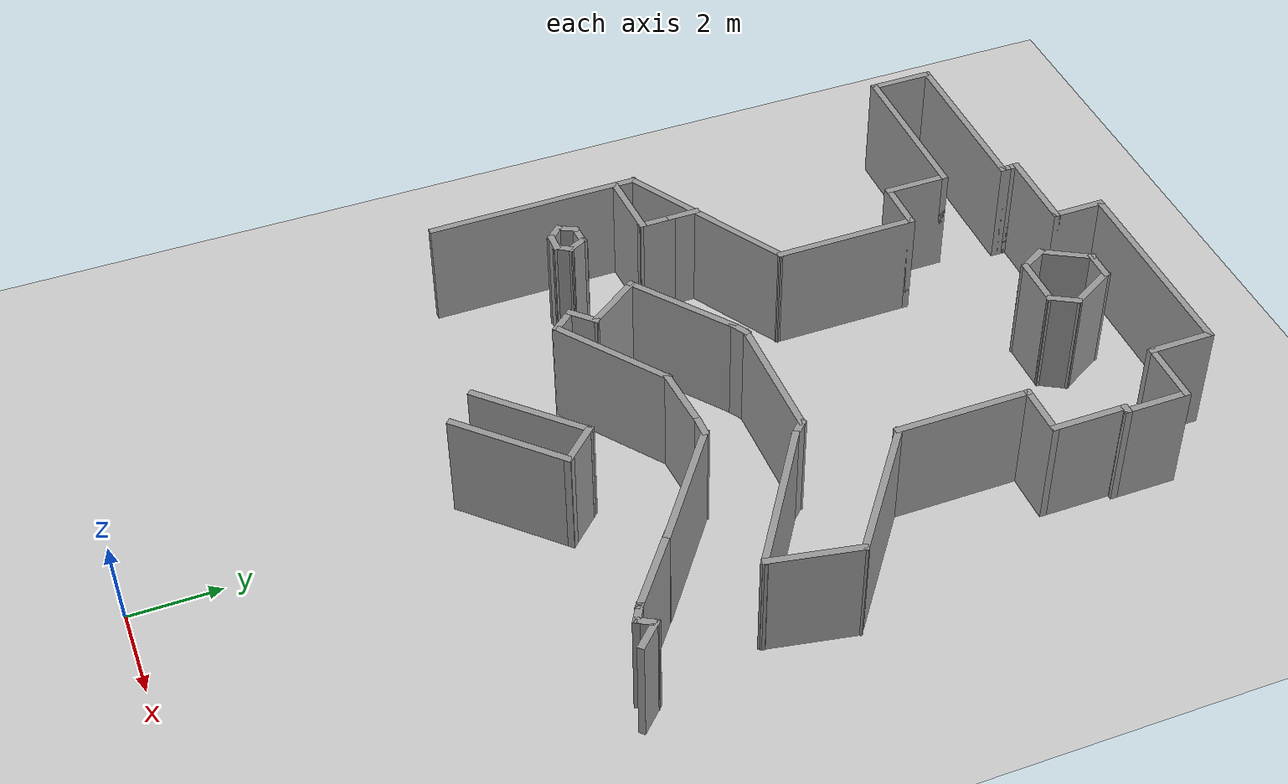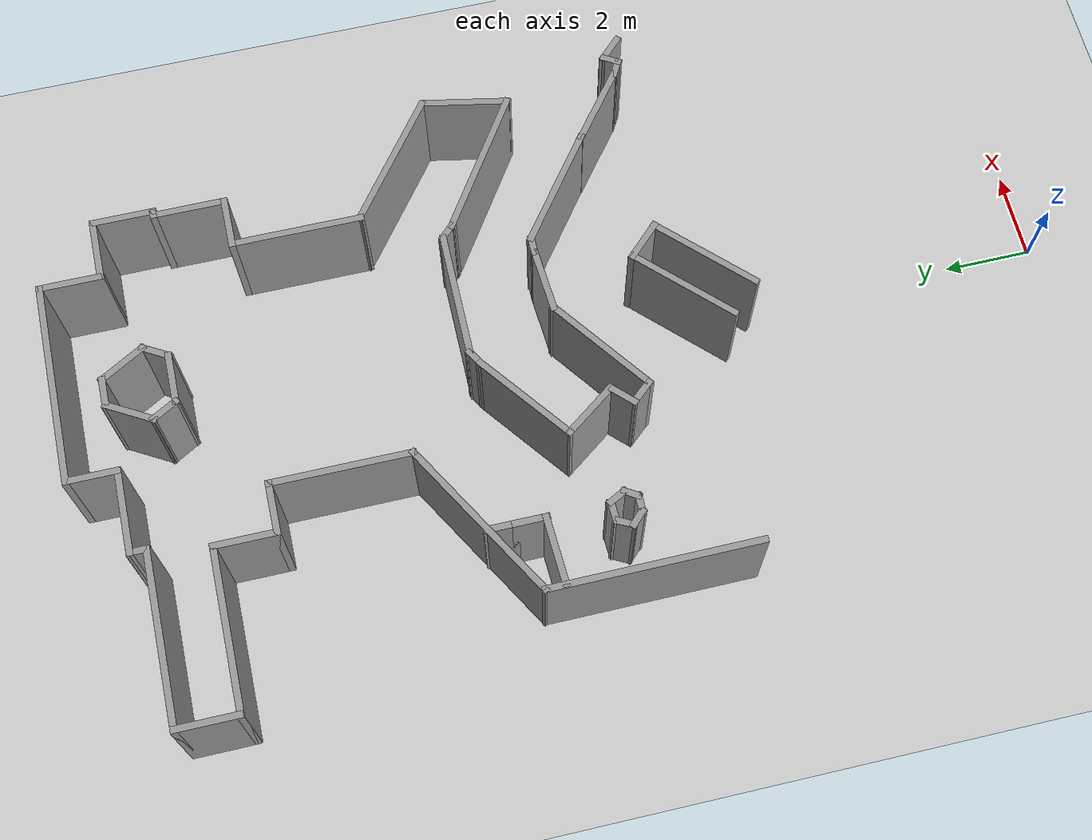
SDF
<sdf version="1.7">
 <world name="default">
  <model name="ground_plane">
   <static>1</static>
   <link name="link">
    <collision name="collision">
     <geometry><plane><normal>0 0 1</normal><size>100 100</size></plane></geometry>
     <surface>
      <contact><collide_bitmask>65535</collide_bitmask></contact>
      <friction><ode><mu>100</mu><mu2>50</mu2></ode></friction>
     </surface>
    </collision>
    <visual name="visual">
     <cast_shadows>0</cast_shadows>
     <geometry><plane><normal>0 0 1</normal><size>100 100</size></plane></geometry>
     <material>
      <script><uri>file://media/materials/scripts/gazebo.material</uri><name>Gazebo/Grey</name></script>
     </material>
    </visual>
   </link>
  </model>
  <model name="all_changdi">
   <pose>0.143338 8.39111 0 0 0 -1.57051</pose>
   <link name="Wall_0">
    <collision name="Wall_0_Collision">
     <geometry><box><size>3.05417 0.15 2.5</size></box></geometry>
     <pose>0 0 1.25 0 -0 0</pose>
    </collision>
    <visual name="Wall_0_Visual">
     <pose>0 0 1.25 0 -0 0</pose>
     <geometry><box><size>3.05417 0.15 2.5</size></box></geometry>
     <material>
      <script><uri>file://media/materials/scripts/gazebo.material</uri><name>Gazebo/Grey</name></script>
      <ambient>1 1 1 1</ambient>
     </material>
     <meta><layer>0</layer></meta>
    </visual>
    <pose>-8.26691 2.98126 0 0 -0 0</pose>
   </link>
   <link name="Wall_10">
    <collision name="Wall_10_Collision">
     <geometry><box><size>2 0.15 2.5</size></box></geometry>
     <pose>0 0 1.25 0 -0 0</pose>
    </collision>
    <visual name="Wall_10_Visual">
     <pose>0 0 1.25 0 -0 0</pose>
     <geometry><box><size>2 0.15 2.5</size></box></geometry>
     <material>
      <script><uri>file://media/materials/scripts/gazebo.material</uri><name>Gazebo/Grey</name></script>
      <ambient>1 1 1 1</ambient>
     </material>
     <meta><layer>0</layer></meta>
    </visual>
    <pose>-12.919 -2.69374 0 0 -0 -1.5708</pose>
   </link>
   <link name="Wall_11">
    <collision name="Wall_11_Collision">
     <geometry><box><size>0.25 0.15 2.5</size></box></geometry>
     <pose>0 0 1.25 0 -0 0</pose>
    </collision>
    <visual name="Wall_11_Visual">
     <pose>0 0 1.25 0 -0 0</pose>
     <geometry><box><size>0.25 0.15 2.5</size></box></geometry>
     <material>
      <script><uri>file://media/materials/scripts/gazebo.material</uri><name>Gazebo/Grey</name></script>
      <ambient>1 1 1 1</ambient>
     </material>
     <meta><layer>0</layer></meta>
    </visual>
    <pose>-12.869 -3.61874 0 0 -0 0</pose>
   </link>
   <link name="Wall_13">
    <collision name="Wall_13_Collision">
     <geometry><box><size>0.5 0.15 2.5</size></box></geometry>
     <pose>0 0 1.25 0 -0 0</pose>
    </collision>
    <visual name="Wall_13_Visual">
     <pose>0 0 1.25 0 -0 0</pose>
     <geometry><box><size>0.5 0.15 2.5</size></box></geometry>
     <material>
      <script><uri>file://media/materials/scripts/gazebo.material</uri><name>Gazebo/Grey</name></script>
      <ambient>1 1 1 1</ambient>
     </material>
     <meta><layer>0</layer></meta>
    </visual>
    <pose>-12.744 -3.61874 0 0 -0 0</pose>
   </link>
   <link name="Wall_132">
    <collision name="Wall_132_Collision">
     <geometry><box><size>0.526214 0.15 2.5</size></box></geometry>
     <pose>0 0 1.25 0 -0 0</pose>
    </collision>
    <visual name="Wall_132_Visual">
     <pose>0 0 1.25 0 -0 0</pose>
     <geometry><box><size>0.526214 0.15 2.5</size></box></geometry>
     <material>
      <script><uri>file://media/materials/scripts/gazebo.material</uri><name>Gazebo/Grey</name></script>
      <ambient>1 1 1 1</ambient>
     </material>
     <meta><layer>0</layer></meta>
    </visual>
    <pose>-2.80129 -4.70495 0 0 -0 0.483817</pose>
   </link>
   <link name="Wall_133">
    <collision name="Wall_133_Collision">
     <geometry><box><size>0.461748 0.15 2.5</size></box></geometry>
     <pose>0 0 1.25 0 -0 0</pose>
    </collision>
    <visual name="Wall_133_Visual">
     <pose>0 0 1.25 0 -0 0</pose>
     <geometry><box><size>0.461748 0.15 2.5</size></box></geometry>
     <material>
      <script><uri>file://media/materials/scripts/gazebo.material</uri><name>Gazebo/Grey</name></script>
      <ambient>1 1 1 1</ambient>
     </material>
     <meta><layer>0</layer></meta>
    </visual>
    <pose>-2.5015 -4.6983 0 0 -0 -0.545315</pose>
   </link>
   <link name="Wall_134">
    <collision name="Wall_134_Collision">
     <geometry><box><size>0.5 0.15 2.5</size></box></geometry>
     <pose>0 0 1.25 0 -0 0</pose>
    </collision>
    <visual name="Wall_134_Visual">
     <pose>0 0 1.25 0 -0 0</pose>
     <geometry><box><size>0.5 0.15 2.5</size></box></geometry>
     <material>
      <script><uri>file://media/materials/scripts/gazebo.material</uri><name>Gazebo/Grey</name></script>
      <ambient>1 1 1 1</ambient>
     </material>
     <meta><layer>0</layer></meta>
    </visual>
    <pose>-2.36824 -4.95415 0 0 -0 -1.5708</pose>
   </link>
   <link name="Wall_135">
    <collision name="Wall_135_Collision">
     <geometry><box><size>0.5 0.15 2.5</size></box></geometry>
     <pose>0 0 1.25 0 -0 0</pose>
    </collision>
    <visual name="Wall_135_Visual">
     <pose>0 0 1.25 0 -0 0</pose>
     <geometry><box><size>0.5 0.15 2.5</size></box></geometry>
     <material>
      <script><uri>file://media/materials/scripts/gazebo.material</uri><name>Gazebo/Grey</name></script>
      <ambient>1 1 1 1</ambient>
     </material>
     <meta><layer>0</layer></meta>
    </visual>
    <pose>-2.49198 -5.2529 0 0 -0 -2.35619</pose>
   </link>
   <link name="Wall_136">
    <collision name="Wall_136_Collision">
     <geometry><box><size>0.526214 0.15 2.5</size></box></geometry>
     <pose>0 0 1.25 0 -0 0</pose>
    </collision>
    <visual name="Wall_136_Visual">
     <pose>0 0 1.25 0 -0 0</pose>
     <geometry><box><size>0.526214 0.15 2.5</size></box></geometry>
     <material>
      <script><uri>file://media/materials/scripts/gazebo.material</uri><name>Gazebo/Grey</name></script>
      <ambient>1 1 1 1</ambient>
     </material>
     <meta><layer>0</layer></meta>
    </visual>
    <pose>-2.78224 -5.28914 0 0 -0 2.65778</pose>
   </link>
   <link name="Wall_137">
    <collision name="Wall_137_Collision">
     <geometry><box><size>0.559798 0.15 2.5</size></box></geometry>
     <pose>0 0 1.25 0 -0 0</pose>
    </collision>
    <visual name="Wall_137_Visual">
     <pose>0 0 1.25 0 -0 0</pose>
     <geometry><box><size>0.559798 0.15 2.5</size></box></geometry>
     <material>
      <script><uri>file://media/materials/scripts/gazebo.material</uri><name>Gazebo/Grey</name></script>
      <ambient>1 1 1 1</ambient>
     </material>
     <meta><layer>0</layer></meta>
    </visual>
    <pose>-2.95662 -4.99705 0 0 -0 1.62541</pose>
   </link>
   <link name="Wall_15">
    <collision name="Wall_15_Collision">
     <geometry><box><size>4 0.15 2.5</size></box></geometry>
     <pose>0 0 1.25 0 -0 0</pose>
    </collision>
    <visual name="Wall_15_Visual">
     <pose>0 0 1.25 0 -0 0</pose>
     <geometry><box><size>4 0.15 2.5</size></box></geometry>
     <material>
      <script><uri>file://media/materials/scripts/gazebo.material</uri><name>Gazebo/Grey</name></script>
      <ambient>1 1 1 1</ambient>
     </material>
     <meta><layer>0</layer></meta>
    </visual>
    <pose>-12.569 -5.54374 0 0 -0 -1.5708</pose>
   </link>
   <link name="Wall_153">
    <collision name="Wall_153_Collision">
     <geometry><box><size>0.75 0.15 2.5</size></box></geometry>
     <pose>0 0 1.25 0 -0 0</pose>
    </collision>
    <visual name="Wall_153_Visual">
     <pose>0 0 1.25 0 -0 0</pose>
     <geometry><box><size>0.75 0.15 2.5</size></box></geometry>
     <material>
      <script><uri>file://media/materials/scripts/gazebo.material</uri><name>Gazebo/Grey</name></script>
      <ambient>1 1 1 1</ambient>
     </material>
     <meta><layer>0</layer></meta>
    </visual>
    <pose>-5.31912 -4.80003 0 0 -0 0</pose>
   </link>
   <link name="Wall_154">
    <collision name="Wall_154_Collision">
     <geometry><box><size>0.828672 0.15 2.5</size></box></geometry>
     <pose>0 0 1.25 0 -0 0</pose>
    </collision>
    <visual name="Wall_154_Visual">
     <pose>0 0 1.25 0 -0 0</pose>
     <geometry><box><size>0.828672 0.15 2.5</size></box></geometry>
     <material>
      <script><uri>file://media/materials/scripts/gazebo.material</uri><name>Gazebo/Grey</name></script>
      <ambient>1 1 1 1</ambient>
     </material>
     <meta><layer>0</layer></meta>
    </visual>
    <pose>-4.67978 -4.80003 0 0 -0 0</pose>
   </link>
   <link name="Wall_158">
    <collision name="Wall_158_Collision">
     <geometry><box><size>1.64662 0.15 2.5</size></box></geometry>
     <pose>0 0 1.25 0 -0 0</pose>
    </collision>
    <visual name="Wall_158_Visual">
     <pose>0 0 1.25 0 -0 0</pose>
     <geometry><box><size>1.64662 0.15 2.5</size></box></geometry>
     <material>
      <script><uri>file://media/materials/scripts/gazebo.material</uri><name>Gazebo/Grey</name></script>
      <ambient>1 1 1 1</ambient>
     </material>
     <meta><layer>0</layer></meta>
    </visual>
    <pose>-4.31894 -5.54741 0 0 -0 1.62058</pose>
   </link>
   <link name="Wall_16">
    <collision name="Wall_16_Collision">
     <geometry><box><size>1.5 0.15 2.5</size></box></geometry>
     <pose>0 0 1.25 0 -0 0</pose>
    </collision>
    <visual name="Wall_16_Visual">
     <pose>0 0 1.25 0 -0 0</pose>
     <geometry><box><size>1.5 0.15 2.5</size></box></geometry>
     <material>
      <script><uri>file://media/materials/scripts/gazebo.material</uri><name>Gazebo/Grey</name></script>
      <ambient>1 1 1 1</ambient>
     </material>
     <meta><layer>0</layer></meta>
    </visual>
    <pose>-11.894 -7.46874 0 0 -0 0</pose>
   </link>
   <link name="Wall_17">
    <collision name="Wall_17_Collision">
     <geometry><box><size>3.75 0.15 2.5</size></box></geometry>
     <pose>0 0 1.25 0 -0 0</pose>
    </collision>
    <visual name="Wall_17_Visual">
     <pose>0 0 1.25 0 -0 0</pose>
     <geometry><box><size>3.75 0.15 2.5</size></box></geometry>
     <material>
      <script><uri>file://media/materials/scripts/gazebo.material</uri><name>Gazebo/Grey</name></script>
      <ambient>1 1 1 1</ambient>
     </material>
     <meta><layer>0</layer></meta>
    </visual>
    <pose>-11.219 -5.66874 0 0 -0 1.5708</pose>
   </link>
   <link name="Wall_18">
    <collision name="Wall_18_Collision">
     <geometry><box><size>1.5 0.15 2.5</size></box></geometry>
     <pose>0 0 1.25 0 -0 0</pose>
    </collision>
    <visual name="Wall_18_Visual">
     <pose>0 0 1.25 0 -0 0</pose>
     <geometry><box><size>1.5 0.15 2.5</size></box></geometry>
     <material>
      <script><uri>file://media/materials/scripts/gazebo.material</uri><name>Gazebo/Grey</name></script>
      <ambient>1 1 1 1</ambient>
     </material>
     <meta><layer>0</layer></meta>
    </visual>
    <pose>-10.544 -3.86874 0 0 -0 0</pose>
   </link>
   <link name="Wall_19">
    <collision name="Wall_19_Collision">
     <geometry><box><size>1.25 0.15 2.5</size></box></geometry>
     <pose>0 0 1.25 0 -0 0</pose>
    </collision>
    <visual name="Wall_19_Visual">
     <pose>0 0 1.25 0 -0 0</pose>
     <geometry><box><size>1.25 0.15 2.5</size></box></geometry>
     <material>
      <script><uri>file://media/materials/scripts/gazebo.material</uri><name>Gazebo/Grey</name></script>
      <ambient>1 1 1 1</ambient>
     </material>
     <meta><layer>0</layer></meta>
    </visual>
    <pose>-9.86899 -3.31874 0 0 -0 1.5708</pose>
   </link>
   <link name="Wall_2">
    <collision name="Wall_2_Collision">
     <geometry><box><size>1.25 0.15 2.5</size></box></geometry>
     <pose>0 0 1.25 0 -0 0</pose>
    </collision>
    <visual name="Wall_2_Visual">
     <pose>0 0 1.25 0 -0 0</pose>
     <geometry><box><size>1.25 0.15 2.5</size></box></geometry>
     <material>
      <script><uri>file://media/materials/scripts/gazebo.material</uri><name>Gazebo/Grey</name></script>
      <ambient>1 1 1 1</ambient>
     </material>
     <meta><layer>0</layer></meta>
    </visual>
    <pose>-9.71899 3.53126 0 0 -0 1.5708</pose>
   </link>
   <link name="Wall_20">
    <collision name="Wall_20_Collision">
     <geometry><box><size>3.25 0.15 2.5</size></box></geometry>
     <pose>0 0 1.25 0 -0 0</pose>
    </collision>
    <visual name="Wall_20_Visual">
     <pose>0 0 1.25 0 -0 0</pose>
     <geometry><box><size>3.25 0.15 2.5</size></box></geometry>
     <material>
      <script><uri>file://media/materials/scripts/gazebo.material</uri><name>Gazebo/Grey</name></script>
      <ambient>1 1 1 1</ambient>
     </material>
     <meta><layer>0</layer></meta>
    </visual>
    <pose>-8.31899 -2.76874 0 0 -0 0</pose>
   </link>
   <link name="Wall_21">
    <collision name="Wall_21_Collision">
     <geometry><box><size>4.25 0.15 2.5</size></box></geometry>
     <pose>0 0 1.25 0 -0 0</pose>
    </collision>
    <visual name="Wall_21_Visual">
     <pose>0 0 1.25 0 -0 0</pose>
     <geometry><box><size>4.25 0.15 2.5</size></box></geometry>
     <material>
      <script><uri>file://media/materials/scripts/gazebo.material</uri><name>Gazebo/Grey</name></script>
      <ambient>1 1 1 1</ambient>
     </material>
     <meta><layer>0</layer></meta>
    </visual>
    <pose>-5.74399 -4.5441 0 0 -0 -1.0472</pose>
   </link>
   <link name="Wall_22">
    <collision name="Wall_22_Collision">
     <geometry><box><size>4.82308 0.15 2.5</size></box></geometry>
     <pose>0 0 1.25 0 -0 0</pose>
    </collision>
    <visual name="Wall_22_Visual">
     <pose>0 0 1.25 0 -0 0</pose>
     <geometry><box><size>4.82308 0.15 2.5</size></box></geometry>
     <material>
      <script><uri>file://media/materials/scripts/gazebo.material</uri><name>Gazebo/Grey</name></script>
      <ambient>1 1 1 1</ambient>
     </material>
     <meta><layer>0</layer></meta>
    </visual>
    <pose>-2.38247 -6.31055 0 0 -0 0.003807</pose>
   </link>
   <link name="Wall_25">
    <collision name="Wall_25_Collision">
     <geometry><box><size>3.38006 0.15 2.5</size></box></geometry>
     <pose>0 0 1.25 0 -0 0</pose>
    </collision>
    <visual name="Wall_25_Visual">
     <pose>0 0 1.25 0 -0 0</pose>
     <geometry><box><size>3.38006 0.15 2.5</size></box></geometry>
     <material>
      <script><uri>file://media/materials/scripts/gazebo.material</uri><name>Gazebo/Grey</name></script>
      <ambient>1 1 1 1</ambient>
     </material>
     <meta><layer>0</layer></meta>
    </visual>
    <pose>-5.86329 4.27499 0 0 -0 0.929057</pose>
   </link>
   <link name="Wall_26">
    <collision name="Wall_26_Collision">
     <geometry><box><size>2.0686 0.15 2.5</size></box></geometry>
     <pose>0 0 1.25 0 -0 0</pose>
    </collision>
    <visual name="Wall_26_Visual">
     <pose>0 0 1.25 0 -0 0</pose>
     <geometry><box><size>2.0686 0.15 2.5</size></box></geometry>
     <material>
      <script><uri>file://media/materials/scripts/gazebo.material</uri><name>Gazebo/Grey</name></script>
      <ambient>1 1 1 1</ambient>
     </material>
     <meta><layer>0</layer></meta>
    </visual>
    <pose>-3.93963 5.38582 0 0 -0 -0.191825</pose>
   </link>
   <link name="Wall_27">
    <collision name="Wall_27_Collision">
     <geometry><box><size>3.59781 0.15 2.5</size></box></geometry>
     <pose>0 0 1.25 0 -0 0</pose>
    </collision>
    <visual name="Wall_27_Visual">
     <pose>0 0 1.25 0 -0 0</pose>
     <geometry><box><size>3.59781 0.15 2.5</size></box></geometry>
     <material>
      <script><uri>file://media/materials/scripts/gazebo.material</uri><name>Gazebo/Grey</name></script>
      <ambient>1 1 1 1</ambient>
     </material>
     <meta><layer>0</layer></meta>
    </visual>
    <pose>-3.92972 3.76243 0 0 -0 -2.15236</pose>
   </link>
   <link name="Wall_3">
    <collision name="Wall_3_Collision">
     <geometry><box><size>1.75 0.15 2.5</size></box></geometry>
     <pose>0 0 1.25 0 -0 0</pose>
    </collision>
    <visual name="Wall_3_Visual">
     <pose>0 0 1.25 0 -0 0</pose>
     <geometry><box><size>1.75 0.15 2.5</size></box></geometry>
     <material>
      <script><uri>file://media/materials/scripts/gazebo.material</uri><name>Gazebo/Grey</name></script>
      <ambient>1 1 1 1</ambient>
     </material>
     <meta><layer>0</layer></meta>
    </visual>
    <pose>-10.519 4.08126 0 0 -0 3.14159</pose>
   </link>
   <link name="Wall_30">
    <collision name="Wall_30_Collision">
     <geometry><box><size>0.5 0.15 2.5</size></box></geometry>
     <pose>0 0 1.25 0 -0 0</pose>
    </collision>
    <visual name="Wall_30_Visual">
     <pose>0 0 1.25 0 -0 0</pose>
     <geometry><box><size>0.5 0.15 2.5</size></box></geometry>
     <material>
      <script><uri>file://media/materials/scripts/gazebo.material</uri><name>Gazebo/Grey</name></script>
      <ambient>1 1 1 1</ambient>
     </material>
     <meta><layer>0</layer></meta>
    </visual>
    <pose>-5.00046 2.19819 0 0 -0 -2.35619</pose>
   </link>
   <link name="Wall_33">
    <collision name="Wall_33_Collision">
     <geometry><box><size>3 0.15 2.5</size></box></geometry>
     <pose>0 0 1.25 0 -0 0</pose>
    </collision>
    <visual name="Wall_33_Visual">
     <pose>0 0 1.25 0 -0 0</pose>
     <geometry><box><size>3 0.15 2.5</size></box></geometry>
     <material>
      <script><uri>file://media/materials/scripts/gazebo.material</uri><name>Gazebo/Grey</name></script>
      <ambient>1 1 1 1</ambient>
     </material>
     <meta><layer>0</layer></meta>
    </visual>
    <pose>-5.1242 0.649444 0 0 -0 -1.5708</pose>
   </link>
   <link name="Wall_35">
    <collision name="Wall_35_Collision">
     <geometry><box><size>0.5 0.15 2.5</size></box></geometry>
     <pose>0 0 1.25 0 -0 0</pose>
    </collision>
    <visual name="Wall_35_Visual">
     <pose>0 0 1.25 0 -0 0</pose>
     <geometry><box><size>0.5 0.15 2.5</size></box></geometry>
     <material>
      <script><uri>file://media/materials/scripts/gazebo.material</uri><name>Gazebo/Grey</name></script>
      <ambient>1 1 1 1</ambient>
     </material>
     <meta><layer>0</layer></meta>
    </visual>
    <pose>-5.03671 -0.9269 0 0 -0 -1.04664</pose>
   </link>
   <link name="Wall_36">
    <collision name="Wall_36_Collision">
     <geometry><box><size>2.65222 0.15 2.5</size></box></geometry>
     <pose>0 0 1.25 0 -0 0</pose>
    </collision>
    <visual name="Wall_36_Visual">
     <pose>0 0 1.25 0 -0 0</pose>
     <geometry><box><size>2.65222 0.15 2.5</size></box></geometry>
     <material>
      <script><uri>file://media/materials/scripts/gazebo.material</uri><name>Gazebo/Grey</name></script>
      <ambient>1 1 1 1</ambient>
     </material>
     <meta><layer>0</layer></meta>
    </visual>
    <pose>-4.19472 -2.07624 0 0 -0 -0.923459</pose>
   </link>
   <link name="Wall_38">
    <collision name="Wall_38_Collision">
     <geometry><box><size>1.49805 0.15 2.5</size></box></geometry>
     <pose>0 0 1.25 0 -0 0</pose>
    </collision>
    <visual name="Wall_38_Visual">
     <pose>0 0 1.25 0 -0 0</pose>
     <geometry><box><size>1.49805 0.15 2.5</size></box></geometry>
     <material>
      <script><uri>file://media/materials/scripts/gazebo.material</uri><name>Gazebo/Grey</name></script>
      <ambient>1 1 1 1</ambient>
     </material>
     <meta><layer>0</layer></meta>
    </visual>
    <pose>-2.89772 -2.67424 0 0 -0 0.635341</pose>
   </link>
   <link name="Wall_4">
    <collision name="Wall_4_Collision">
     <geometry><box><size>0.25 0.15 2.5</size></box></geometry>
     <pose>0 0 1.25 0 -0 0</pose>
    </collision>
    <visual name="Wall_4_Visual">
     <pose>0 0 1.25 0 -0 0</pose>
     <geometry><box><size>0.25 0.15 2.5</size></box></geometry>
     <material>
      <script><uri>file://media/materials/scripts/gazebo.material</uri><name>Gazebo/Grey</name></script>
      <ambient>1 1 1 1</ambient>
     </material>
     <meta><layer>0</layer></meta>
    </visual>
    <pose>-11.319 4.13126 0 0 -0 1.5708</pose>
   </link>
   <link name="Wall_40">
    <collision name="Wall_40_Collision">
     <geometry><box><size>0.75 0.15 2.5</size></box></geometry>
     <pose>0 0 1.25 0 -0 0</pose>
    </collision>
    <visual name="Wall_40_Visual">
     <pose>0 0 1.25 0 -0 0</pose>
     <geometry><box><size>0.75 0.15 2.5</size></box></geometry>
     <material>
      <script><uri>file://media/materials/scripts/gazebo.material</uri><name>Gazebo/Grey</name></script>
      <ambient>1 1 1 1</ambient>
     </material>
     <meta><layer>0</layer></meta>
    </visual>
    <pose>-2.14309 -2.48638 0 0 -0 -0.785398</pose>
   </link>
   <link name="Wall_41">
    <collision name="Wall_41_Collision">
     <geometry><box><size>0.69694 0.15 2.5</size></box></geometry>
     <pose>0 0 1.25 0 -0 0</pose>
    </collision>
    <visual name="Wall_41_Visual">
     <pose>0 0 1.25 0 -0 0</pose>
     <geometry><box><size>0.69694 0.15 2.5</size></box></geometry>
     <material>
      <script><uri>file://media/materials/scripts/gazebo.material</uri><name>Gazebo/Grey</name></script>
      <ambient>1 1 1 1</ambient>
     </material>
     <meta><layer>0</layer></meta>
    </visual>
    <pose>-1.72622 -2.51721 0 0 -0 0.724751</pose>
   </link>
   <link name="Wall_42">
    <collision name="Wall_42_Collision">
     <geometry><box><size>2.87059 0.15 2.5</size></box></geometry>
     <pose>0 0 1.25 0 -0 0</pose>
    </collision>
    <visual name="Wall_42_Visual">
     <pose>0 0 1.25 0 -0 0</pose>
     <geometry><box><size>2.87059 0.15 2.5</size></box></geometry>
     <material>
      <script><uri>file://media/materials/scripts/gazebo.material</uri><name>Gazebo/Grey</name></script>
      <ambient>1 1 1 1</ambient>
     </material>
     <meta><layer>0</layer></meta>
    </visual>
    <pose>-2.31474 -1.23642 0 0 -0 2.20037</pose>
   </link>
   <link name="Wall_43">
    <collision name="Wall_43_Collision">
     <geometry><box><size>1.56641 0.15 2.5</size></box></geometry>
     <pose>0 0 1.25 0 -0 0</pose>
    </collision>
    <visual name="Wall_43_Visual">
     <pose>0 0 1.25 0 -0 0</pose>
     <geometry><box><size>1.56641 0.15 2.5</size></box></geometry>
     <material>
      <script><uri>file://media/materials/scripts/gazebo.material</uri><name>Gazebo/Grey</name></script>
      <ambient>1 1 1 1</ambient>
     </material>
     <meta><layer>0</layer></meta>
    </visual>
    <pose>-3.16887 0.561586 0 0 -0 1.64596</pose>
   </link>
   <link name="Wall_45">
    <collision name="Wall_45_Collision">
     <geometry><box><size>0.5 0.15 2.5</size></box></geometry>
     <pose>0 0 1.25 0 -0 0</pose>
    </collision>
    <visual name="Wall_45_Visual">
     <pose>0 0 1.25 0 -0 0</pose>
     <geometry><box><size>0.5 0.15 2.5</size></box></geometry>
     <material>
      <script><uri>file://media/materials/scripts/gazebo.material</uri><name>Gazebo/Grey</name></script>
      <ambient>1 1 1 1</ambient>
     </material>
     <meta><layer>0</layer></meta>
    </visual>
    <pose>-3.22205 1.44279 0 0 -0 1.5708</pose>
   </link>
   <link name="Wall_46">
    <collision name="Wall_46_Collision">
     <geometry><box><size>2.9882 0.15 2.5</size></box></geometry>
     <pose>0 0 1.25 0 -0 0</pose>
    </collision>
    <visual name="Wall_46_Visual">
     <pose>0 0 1.25 0 -0 0</pose>
     <geometry><box><size>2.9882 0.15 2.5</size></box></geometry>
     <material>
      <script><uri>file://media/materials/scripts/gazebo.material</uri><name>Gazebo/Grey</name></script>
      <ambient>1 1 1 1</ambient>
     </material>
     <meta><layer>0</layer></meta>
    </visual>
    <pose>-2.37868 2.75909 0 0 -0 0.934404</pose>
   </link>
   <link name="Wall_47">
    <collision name="Wall_47_Collision">
     <geometry><box><size>1.99389 0.15 2.5</size></box></geometry>
     <pose>0 0 1.25 0 -0 0</pose>
    </collision>
    <visual name="Wall_47_Visual">
     <pose>0 0 1.25 0 -0 0</pose>
     <geometry><box><size>1.99389 0.15 2.5</size></box></geometry>
     <material>
      <script><uri>file://media/materials/scripts/gazebo.material</uri><name>Gazebo/Grey</name></script>
      <ambient>1 1 1 1</ambient>
     </material>
     <meta><layer>0</layer></meta>
    </visual>
    <pose>-0.974061 4.61634 0 0 -0 0.916281</pose>
   </link>
   <link name="Wall_5">
    <collision name="Wall_5_Collision">
     <geometry><box><size>1.5 0.15 2.5</size></box></geometry>
     <pose>0 0 1.25 0 -0 0</pose>
    </collision>
    <visual name="Wall_5_Visual">
     <pose>0 0 1.25 0 -0 0</pose>
     <geometry><box><size>1.5 0.15 2.5</size></box></geometry>
     <material>
      <script><uri>file://media/materials/scripts/gazebo.material</uri><name>Gazebo/Grey</name></script>
      <ambient>1 1 1 1</ambient>
     </material>
     <meta><layer>0</layer></meta>
    </visual>
    <pose>-11.994 4.18126 0 0 -0 3.14159</pose>
   </link>
   <link name="Wall_51">
    <collision name="Wall_51_Collision">
     <geometry><box><size>0.5 0.15 2.5</size></box></geometry>
     <pose>0 0 1.25 0 -0 0</pose>
    </collision>
    <visual name="Wall_51_Visual">
     <pose>0 0 1.25 0 -0 0</pose>
     <geometry><box><size>0.5 0.15 2.5</size></box></geometry>
     <material>
      <script><uri>file://media/materials/scripts/gazebo.material</uri><name>Gazebo/Grey</name></script>
      <ambient>1 1 1 1</ambient>
     </material>
     <meta><layer>0</layer></meta>
    </visual>
    <pose>-0.325303 5.49932 0 0 -0 1.0472</pose>
   </link>
   <link name="Wall_52">
    <collision name="Wall_52_Collision">
     <geometry><box><size>0.5 0.15 2.5</size></box></geometry>
     <pose>0 0 1.25 0 -0 0</pose>
    </collision>
    <visual name="Wall_52_Visual">
     <pose>0 0 1.25 0 -0 0</pose>
     <geometry><box><size>0.5 0.15 2.5</size></box></geometry>
     <material>
      <script><uri>file://media/materials/scripts/gazebo.material</uri><name>Gazebo/Grey</name></script>
      <ambient>1 1 1 1</ambient>
     </material>
     <meta><layer>0</layer></meta>
    </visual>
    <pose>-0.389357 5.73837 0 0 -0 2.61799</pose>
   </link>
   <link name="Wall_54">
    <collision name="Wall_54_Collision">
     <geometry><box><size>0.75 0.15 2.5</size></box></geometry>
     <pose>0 0 1.25 0 -0 0</pose>
    </collision>
    <visual name="Wall_54_Visual">
     <pose>0 0 1.25 0 -0 0</pose>
     <geometry><box><size>0.75 0.15 2.5</size></box></geometry>
     <material>
      <script><uri>file://media/materials/scripts/gazebo.material</uri><name>Gazebo/Grey</name></script>
      <ambient>1 1 1 1</ambient>
     </material>
     <meta><layer>0</layer></meta>
    </visual>
    <pose>-0.32878 6.03801 0 0 -0 0.785398</pose>
   </link>
   <link name="Wall_6">
    <collision name="Wall_6_Collision">
     <geometry><box><size>1.5 0.15 2.5</size></box></geometry>
     <pose>0 0 1.25 0 -0 0</pose>
    </collision>
    <visual name="Wall_6_Visual">
     <pose>0 0 1.25 0 -0 0</pose>
     <geometry><box><size>1.5 0.15 2.5</size></box></geometry>
     <material>
      <script><uri>file://media/materials/scripts/gazebo.material</uri><name>Gazebo/Grey</name></script>
      <ambient>1 1 1 1</ambient>
     </material>
     <meta><layer>0</layer></meta>
    </visual>
    <pose>-12.669 3.50626 0 0 -0 -1.5708</pose>
   </link>
   <link name="Wall_60">
    <collision name="Wall_60_Collision">
     <geometry><box><size>2.75 0.15 2.5</size></box></geometry>
     <pose>0 0 1.25 0 -0 0</pose>
    </collision>
    <visual name="Wall_60_Visual">
     <pose>0 0 1.25 0 -0 0</pose>
     <geometry><box><size>2.75 0.15 2.5</size></box></geometry>
     <material>
      <script><uri>file://media/materials/scripts/gazebo.material</uri><name>Gazebo/Grey</name></script>
      <ambient>1 1 1 1</ambient>
     </material>
     <meta><layer>0</layer></meta>
    </visual>
    <pose>-0.200844 -0.232084 0 0 -0 -0.785398</pose>
   </link>
   <link name="Wall_62">
    <collision name="Wall_62_Collision">
     <geometry><box><size>2.75 0.15 2.5</size></box></geometry>
     <pose>0 0 1.25 0 -0 0</pose>
    </collision>
    <visual name="Wall_62_Visual">
     <pose>0 0 1.25 0 -0 0</pose>
     <geometry><box><size>2.75 0.15 2.5</size></box></geometry>
     <material>
      <script><uri>file://media/materials/scripts/gazebo.material</uri><name>Gazebo/Grey</name></script>
      <ambient>1 1 1 1</ambient>
     </material>
     <meta><layer>0</layer></meta>
    </visual>
    <pose>0.443701 0.404593 0 0 -0 2.35619</pose>
   </link>
   <link name="Wall_63">
    <collision name="Wall_63_Collision">
     <geometry><box><size>1.07265 0.15 2.5</size></box></geometry>
     <pose>0 0 1.25 0 -0 0</pose>
    </collision>
    <visual name="Wall_63_Visual">
     <pose>0 0 1.25 0 -0 0</pose>
     <geometry><box><size>1.07265 0.15 2.5</size></box></geometry>
     <material>
      <script><uri>file://media/materials/scripts/gazebo.material</uri><name>Gazebo/Grey</name></script>
      <ambient>1 1 1 1</ambient>
     </material>
     <meta><layer>0</layer></meta>
    </visual>
    <pose>-0.79781 1.00156 0 0 -0 -2.36825</pose>
   </link>
   <link name="Wall_65">
    <collision name="Wall_65_Collision">
     <geometry><box><size>1.25 0.15 2.5</size></box></geometry>
     <pose>0 0 1.25 0 -0 0</pose>
    </collision>
    <visual name="Wall_65_Visual">
     <pose>0 0 1.25 0 -0 0</pose>
     <geometry><box><size>1.25 0.15 2.5</size></box></geometry>
     <material>
      <script><uri>file://media/materials/scripts/gazebo.material</uri><name>Gazebo/Grey</name></script>
      <ambient>1 1 1 1</ambient>
     </material>
     <meta><layer>0</layer></meta>
    </visual>
    <pose>-12.4872 0.641753 0 0 -0 0.523599</pose>
   </link>
   <link name="Wall_66">
    <collision name="Wall_66_Collision">
     <geometry><box><size>0.75 0.15 2.5</size></box></geometry>
     <pose>0 0 1.25 0 -0 0</pose>
    </collision>
    <visual name="Wall_66_Visual">
     <pose>0 0 1.25 0 -0 0</pose>
     <geometry><box><size>0.75 0.15 2.5</size></box></geometry>
     <material>
      <script><uri>file://media/materials/scripts/gazebo.material</uri><name>Gazebo/Grey</name></script>
      <ambient>1 1 1 1</ambient>
     </material>
     <meta><layer>0</layer></meta>
    </visual>
    <pose>-11.7511 0.766753 0 0 -0 -0.523599</pose>
   </link>
   <link name="Wall_67">
    <collision name="Wall_67_Collision">
     <geometry><box><size>1.25 0.15 2.5</size></box></geometry>
     <pose>0 0 1.25 0 -0 0</pose>
    </collision>
    <visual name="Wall_67_Visual">
     <pose>0 0 1.25 0 -0 0</pose>
     <geometry><box><size>1.25 0.15 2.5</size></box></geometry>
     <material>
      <script><uri>file://media/materials/scripts/gazebo.material</uri><name>Gazebo/Grey</name></script>
      <ambient>1 1 1 1</ambient>
     </material>
     <meta><layer>0</layer></meta>
    </visual>
    <pose>-11.4913 0.066753 0 0 -0 -1.5708</pose>
   </link>
   <link name="Wall_7">
    <collision name="Wall_7_Collision">
     <geometry><box><size>1.5 0.15 2.5</size></box></geometry>
     <pose>0 0 1.25 0 -0 0</pose>
    </collision>
    <visual name="Wall_7_Visual">
     <pose>0 0 1.25 0 -0 0</pose>
     <geometry><box><size>1.5 0.15 2.5</size></box></geometry>
     <material>
      <script><uri>file://media/materials/scripts/gazebo.material</uri><name>Gazebo/Grey</name></script>
      <ambient>1 1 1 1</ambient>
     </material>
     <meta><layer>0</layer></meta>
    </visual>
    <pose>-13.344 2.83126 0 0 -0 3.14159</pose>
   </link>
   <link name="Wall_70">
    <collision name="Wall_70_Collision">
     <geometry><box><size>0.75 0.15 2.5</size></box></geometry>
     <pose>0 0 1.25 0 -0 0</pose>
    </collision>
    <visual name="Wall_70_Visual">
     <pose>0 0 1.25 0 -0 0</pose>
     <geometry><box><size>0.75 0.15 2.5</size></box></geometry>
     <material>
      <script><uri>file://media/materials/scripts/gazebo.material</uri><name>Gazebo/Grey</name></script>
      <ambient>1 1 1 1</ambient>
     </material>
     <meta><layer>0</layer></meta>
    </visual>
    <pose>-11.7511 -0.633247 0 0 -0 -2.61799</pose>
   </link>
   <link name="Wall_71">
    <collision name="Wall_71_Collision">
     <geometry><box><size>1.25 0.15 2.5</size></box></geometry>
     <pose>0 0 1.25 0 -0 0</pose>
    </collision>
    <visual name="Wall_71_Visual">
     <pose>0 0 1.25 0 -0 0</pose>
     <geometry><box><size>1.25 0.15 2.5</size></box></geometry>
     <material>
      <script><uri>file://media/materials/scripts/gazebo.material</uri><name>Gazebo/Grey</name></script>
      <ambient>1 1 1 1</ambient>
     </material>
     <meta><layer>0</layer></meta>
    </visual>
    <pose>-12.4872 -0.508247 0 0 -0 2.61799</pose>
   </link>
   <link name="Wall_72">
    <collision name="Wall_72_Collision">
     <geometry><box><size>0.75 0.15 2.5</size></box></geometry>
     <pose>0 0 1.25 0 -0 0</pose>
    </collision>
    <visual name="Wall_72_Visual">
     <pose>0 0 1.25 0 -0 0</pose>
     <geometry><box><size>0.75 0.15 2.5</size></box></geometry>
     <material>
      <script><uri>file://media/materials/scripts/gazebo.material</uri><name>Gazebo/Grey</name></script>
      <ambient>1 1 1 1</ambient>
     </material>
     <meta><layer>0</layer></meta>
    </visual>
    <pose>-12.9636 0.066753 0 0 -0 1.5708</pose>
   </link>
   <link name="Wall_8">
    <collision name="Wall_8_Collision">
     <geometry><box><size>4.75 0.15 2.5</size></box></geometry>
     <pose>0 0 1.25 0 -0 0</pose>
    </collision>
    <visual name="Wall_8_Visual">
     <pose>0 0 1.25 0 -0 0</pose>
     <geometry><box><size>4.75 0.15 2.5</size></box></geometry>
     <material>
      <script><uri>file://media/materials/scripts/gazebo.material</uri><name>Gazebo/Grey</name></script>
      <ambient>1 1 1 1</ambient>
     </material>
     <meta><layer>0</layer></meta>
    </visual>
    <pose>-14.019 0.531256 0 0 -0 -1.5708</pose>
   </link>
   <link name="Wall_9">
    <collision name="Wall_9_Collision">
     <geometry><box><size>1.25 0.15 2.5</size></box></geometry>
     <pose>0 0 1.25 0 -0 0</pose>
    </collision>
    <visual name="Wall_9_Visual">
     <pose>0 0 1.25 0 -0 0</pose>
     <geometry><box><size>1.25 0.15 2.5</size></box></geometry>
     <material>
      <script><uri>file://media/materials/scripts/gazebo.material</uri><name>Gazebo/Grey</name></script>
      <ambient>1 1 1 1</ambient>
     </material>
     <meta><layer>0</layer></meta>
    </visual>
    <pose>-13.469 -1.76874 0 0 -0 0</pose>
   </link>
   <static>1</static>
  </model>
 </world>
</sdf>
